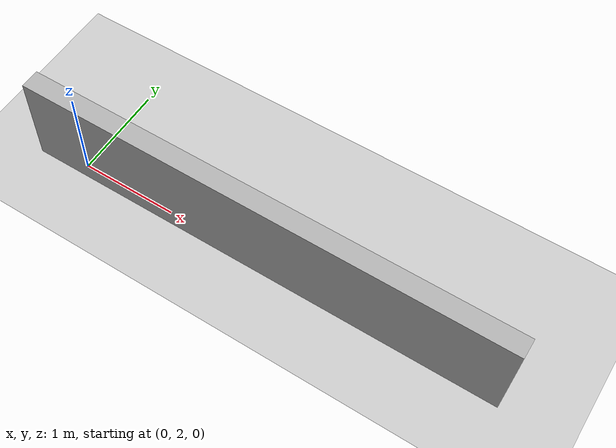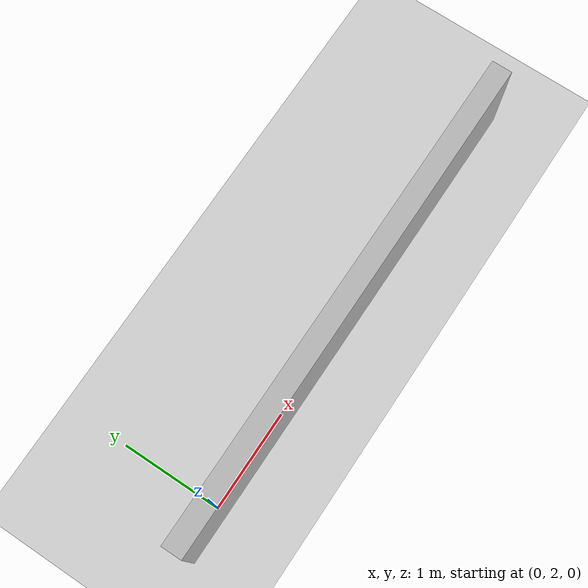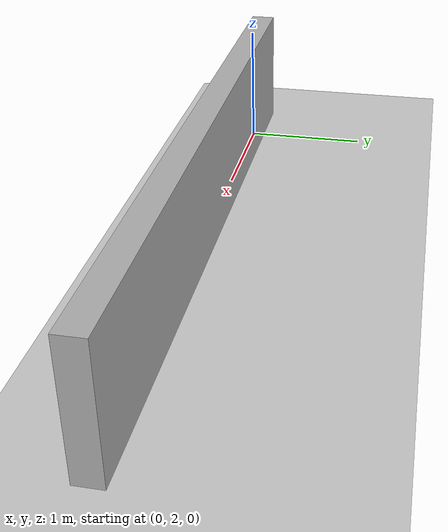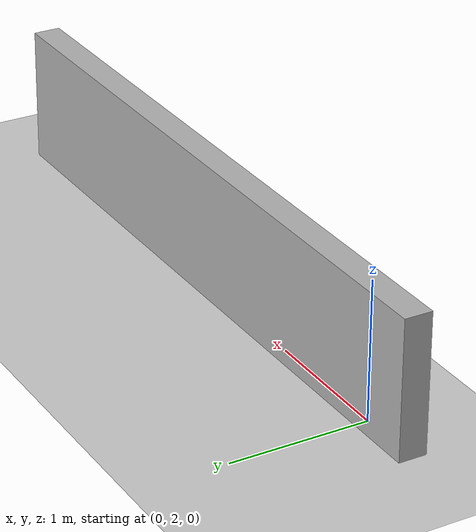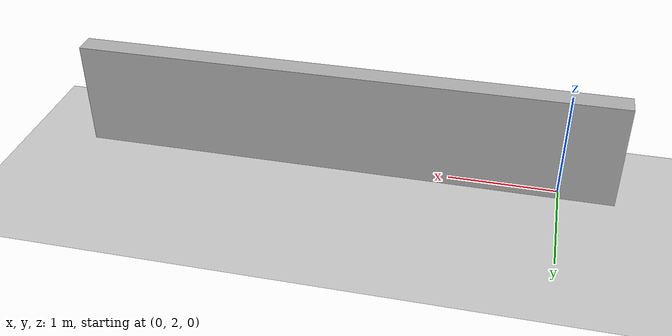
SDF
<?xml version="1.0" ?>
<sdf version="1.6">

  <world name="simple_world">

    <!-- Sun -->
    <include>
      <uri>model://sun</uri>
    </include>

    <!-- Ground -->
    <include>
      <uri>model://ground_plane</uri>
    </include>

    <!-- Wall -->
    <model name="wall_1">
      <static>true</static>

      <link name="link">

        <collision name="collision">
          <geometry>
            <box>
              <size>5 0.2 1</size>
            </box>
          </geometry>
        </collision>

        <visual name="visual">
          <geometry>
            <box>
              <size>5 0.2 1</size>
            </box>
          </geometry>

          <material>
            <ambient>0.7 0.7 0.7 1</ambient>
          </material>

        </visual>

      </link>

      <pose>2 2 0.5 0 0 0</pose>

    </model>

  </world>

</sdf>
